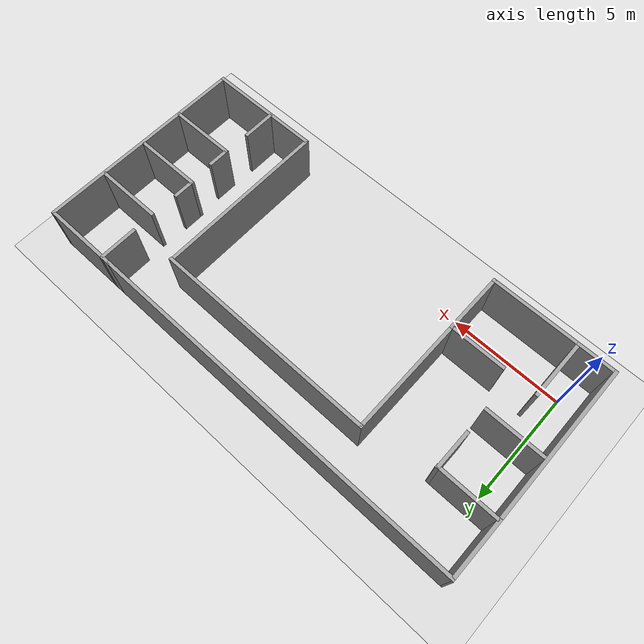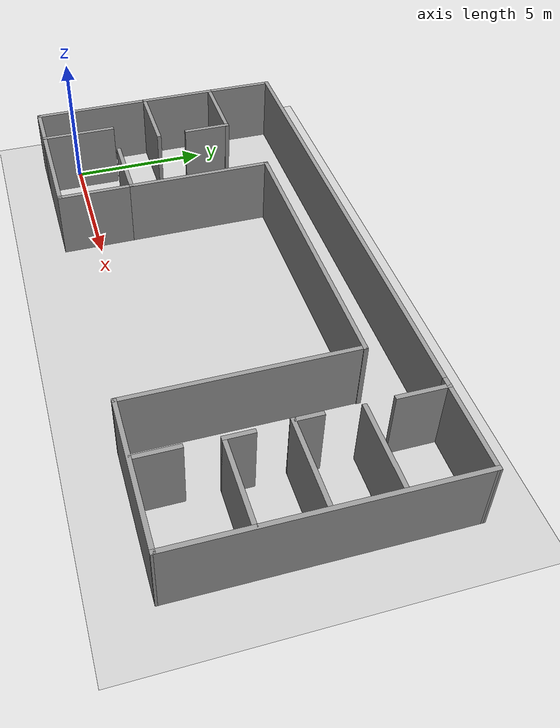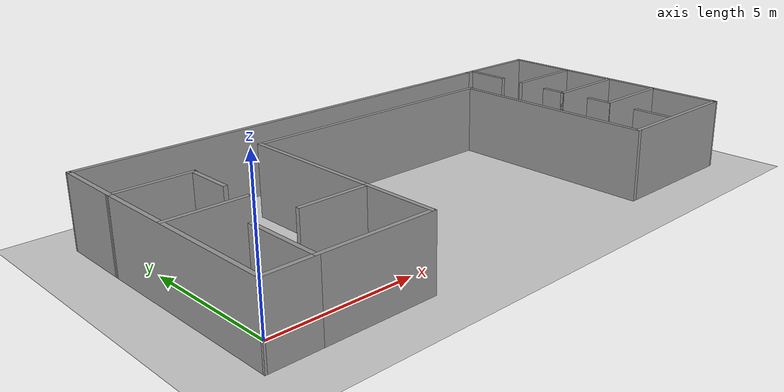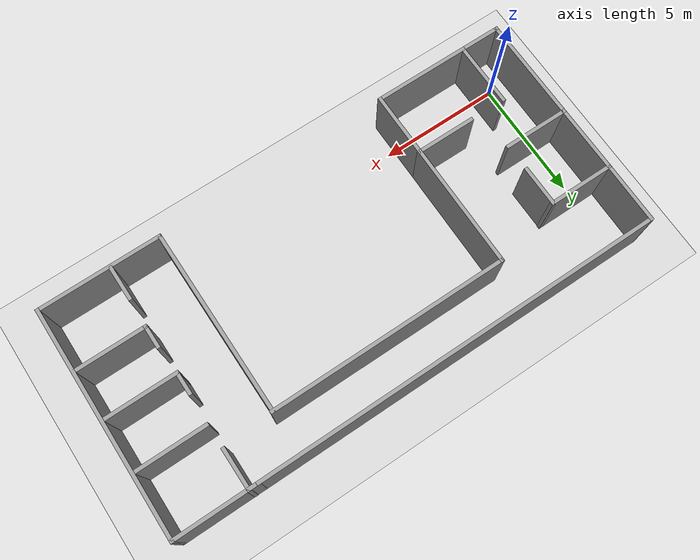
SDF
<sdf version="1.7">
 <world name="default">
  <light name="sun" type="directional">
   <pose>0 0 10 0 -0 0</pose>
   <diffuse>0.8 0.8 0.8 1</diffuse>
   <specular>0.2 0.2 0.2 1</specular>
   <attenuation>
    <range>1000</range>
    <constant>0.9</constant>
    <linear>0.01</linear>
    <quadratic>0.001</quadratic>
   </attenuation>
   <direction>-0.5 0.1 -0.9</direction>
   <spot><inner_angle>0</inner_angle><outer_angle>0</outer_angle><falloff>0</falloff></spot>
  </light>
  <model name="ground_plane">
   <static>1</static>
   <link name="link">
    <collision name="collision">
     <geometry><plane><normal>0 0 1</normal><size>100 100</size></plane></geometry>
     <surface><friction><ode><mu>100</mu><mu2>50</mu2></ode></friction></surface>
    </collision>
    <visual name="visual">
     <cast_shadows>0</cast_shadows>
     <geometry><plane><normal>0 0 1</normal><size>100 100</size></plane></geometry>
     <material>
      <script><uri>file://media/materials/scripts/gazebo.material</uri><name>Gazebo/Grey</name></script>
     </material>
    </visual>
   </link>
  </model>
  <gravity>0 0 -9.8</gravity>
  <magnetic_field>6e-06 2.3e-05 -4.2e-05</magnetic_field>
  <atmosphere type="adiabatic"/>
  <physics type="ode">
   <max_step_size>0.001</max_step_size>
   <real_time_factor>1</real_time_factor>
   <real_time_update_rate>1000</real_time_update_rate>
  </physics>
  <scene><ambient>0.4 0.4 0.4 1</ambient><background>0.7 0.7 0.7 1</background><shadows>1</shadows></scene>
  <spherical_coordinates>
   <surface_model>EARTH_WGS84</surface_model>
   <latitude_deg>0</latitude_deg>
   <longitude_deg>0</longitude_deg>
   <elevation>0</elevation>
   <heading_deg>0</heading_deg>
  </spherical_coordinates>
  <model name="indoors_isolated3">
   <pose>9.27332 3.49203 -0 0 -0 0</pose>
   <link name="Wall_0">
    <collision name="Wall_0_Collision">
     <geometry><box><size>4 0.15 2.5</size></box></geometry>
     <pose>0 0 1.25 0 -0 0</pose>
    </collision>
    <visual name="Wall_0_Visual">
     <pose>0 0 1.25 0 -0 0</pose>
     <geometry><box><size>4 0.15 2.5</size></box></geometry>
     <material>
      <script><uri>file://media/materials/scripts/gazebo.material</uri><name>Gazebo/Grey</name></script>
      <ambient>1 1 1 1</ambient>
     </material>
     <meta><layer>0</layer></meta>
    </visual>
    <pose>-6.56839 -4.72755 0 0 -0 0</pose>
   </link>
   <link name="Wall_10">
    <collision name="Wall_10_Collision">
     <geometry><box><size>2.75 0.15 2.5</size></box></geometry>
     <pose>0 0 1.25 0 -0 0</pose>
    </collision>
    <visual name="Wall_10_Visual">
     <pose>0 0 1.25 0 -0 0</pose>
     <geometry><box><size>2.75 0.15 2.5</size></box></geometry>
     <material>
      <script><uri>file://media/materials/scripts/gazebo.material</uri><name>Gazebo/Grey</name></script>
      <ambient>1 1 1 1</ambient>
     </material>
     <meta><layer>0</layer></meta>
    </visual>
    <pose>-8.79523 -0.466178 0 0 -0 0</pose>
   </link>
   <link name="Wall_12">
    <collision name="Wall_12_Collision">
     <geometry><box><size>5.25 0.15 2.5</size></box></geometry>
     <pose>0 0 1.25 0 -0 0</pose>
    </collision>
    <visual name="Wall_12_Visual">
     <pose>0 0 1.25 0 -0 0</pose>
     <geometry><box><size>5.25 0.15 2.5</size></box></geometry>
     <material>
      <script><uri>file://media/materials/scripts/gazebo.material</uri><name>Gazebo/Grey</name></script>
      <ambient>1 1 1 1</ambient>
     </material>
     <meta><layer>0</layer></meta>
    </visual>
    <pose>-4.64339 0.422455 0 0 -0 1.5708</pose>
   </link>
   <link name="Wall_14">
    <collision name="Wall_14_Collision">
     <geometry><box><size>1.75 0.15 2.5</size></box></geometry>
     <pose>0 0 1.25 0 -0 0</pose>
    </collision>
    <visual name="Wall_14_Visual">
     <pose>0 0 1.25 0 -0 0</pose>
     <geometry><box><size>1.75 0.15 2.5</size></box></geometry>
     <material>
      <script><uri>file://media/materials/scripts/gazebo.material</uri><name>Gazebo/Grey</name></script>
      <ambient>1 1 1 1</ambient>
     </material>
     <meta><layer>0</layer></meta>
    </visual>
    <pose>-7.50661 1.45439 0 0 -0 1.5708</pose>
   </link>
   <link name="Wall_15">
    <collision name="Wall_15_Collision">
     <geometry><box><size>2.75 0.15 2.5</size></box></geometry>
     <pose>0 0 1.25 0 -0 0</pose>
    </collision>
    <visual name="Wall_15_Visual">
     <pose>0 0 1.25 0 -0 0</pose>
     <geometry><box><size>2.75 0.15 2.5</size></box></geometry>
     <material>
      <script><uri>file://media/materials/scripts/gazebo.material</uri><name>Gazebo/Grey</name></script>
      <ambient>1 1 1 1</ambient>
     </material>
     <meta><layer>0</layer></meta>
    </visual>
    <pose>-8.7865 2.25439 0 0 -0 3.14159</pose>
   </link>
   <link name="Wall_17">
    <collision name="Wall_17_Collision">
     <geometry><box><size>2.61811 0.15 2.5</size></box></geometry>
     <pose>0 0 1.25 0 -0 0</pose>
    </collision>
    <visual name="Wall_17_Visual">
     <pose>0 0 1.25 0 -0 0</pose>
     <geometry><box><size>2.61811 0.15 2.5</size></box></geometry>
     <material>
      <script><uri>file://media/materials/scripts/gazebo.material</uri><name>Gazebo/Grey</name></script>
      <ambient>1 1 1 1</ambient>
     </material>
     <meta><layer>0</layer></meta>
    </visual>
    <pose>-10.1 3.48842 0 0 -0 1.56544</pose>
   </link>
   <link name="Wall_18">
    <collision name="Wall_18_Collision">
     <geometry><box><size>17 0.15 2.5</size></box></geometry>
     <pose>0 0 1.25 0 -0 0</pose>
    </collision>
    <visual name="Wall_18_Visual">
     <pose>0 0 1.25 0 -0 0</pose>
     <geometry><box><size>17 0.15 2.5</size></box></geometry>
     <material>
      <script><uri>file://media/materials/scripts/gazebo.material</uri><name>Gazebo/Grey</name></script>
      <ambient>1 1 1 1</ambient>
     </material>
     <meta><layer>0</layer></meta>
    </visual>
    <pose>-1.66839 4.72246 0 0 -0 0</pose>
   </link>
   <link name="Wall_2">
    <collision name="Wall_2_Collision">
     <geometry><box><size>2.75 0.15 2.5</size></box></geometry>
     <pose>0 0 1.25 0 -0 0</pose>
    </collision>
    <visual name="Wall_2_Visual">
     <pose>0 0 1.25 0 -0 0</pose>
     <geometry><box><size>2.75 0.15 2.5</size></box></geometry>
     <material>
      <script><uri>file://media/materials/scripts/gazebo.material</uri><name>Gazebo/Grey</name></script>
      <ambient>1 1 1 1</ambient>
     </material>
     <meta><layer>0</layer></meta>
    </visual>
    <pose>-4.64339 -3.42754 0 0 -0 1.5708</pose>
   </link>
   <link name="Wall_20">
    <collision name="Wall_20_Collision">
     <geometry><box><size>9.89402 0.15 2.5</size></box></geometry>
     <pose>0 0 1.25 0 -0 0</pose>
    </collision>
    <visual name="Wall_20_Visual">
     <pose>0 0 1.25 0 -0 0</pose>
     <geometry><box><size>9.89402 0.15 2.5</size></box></geometry>
     <material>
      <script><uri>file://media/materials/scripts/gazebo.material</uri><name>Gazebo/Grey</name></script>
      <ambient>1 1 1 1</ambient>
     </material>
     <meta><layer>0</layer></meta>
    </visual>
    <pose>0.228623 2.97246 0 0 -0 0</pose>
   </link>
   <link name="Wall_22">
    <collision name="Wall_22_Collision">
     <geometry><box><size>7.75 0.15 2.5</size></box></geometry>
     <pose>0 0 1.25 0 -0 0</pose>
    </collision>
    <visual name="Wall_22_Visual">
     <pose>0 0 1.25 0 -0 0</pose>
     <geometry><box><size>7.75 0.15 2.5</size></box></geometry>
     <material>
      <script><uri>file://media/materials/scripts/gazebo.material</uri><name>Gazebo/Grey</name></script>
      <ambient>1 1 1 1</ambient>
     </material>
     <meta><layer>0</layer></meta>
    </visual>
    <pose>5.07403 -0.827545 0 0 -0 -1.5708</pose>
   </link>
   <link name="Wall_23">
    <collision name="Wall_23_Collision">
     <geometry><box><size>5.10598 0.15 2.5</size></box></geometry>
     <pose>0 0 1.25 0 -0 0</pose>
    </collision>
    <visual name="Wall_23_Visual">
     <pose>0 0 1.25 0 -0 0</pose>
     <geometry><box><size>5.10598 0.15 2.5</size></box></geometry>
     <material>
      <script><uri>file://media/materials/scripts/gazebo.material</uri><name>Gazebo/Grey</name></script>
      <ambient>1 1 1 1</ambient>
     </material>
     <meta><layer>0</layer></meta>
    </visual>
    <pose>7.57862 -4.62754 0 0 -0 0</pose>
   </link>
   <link name="Wall_24">
    <collision name="Wall_24_Collision">
     <geometry><box><size>9.50013 0.15 2.5</size></box></geometry>
     <pose>0 0 1.25 0 -0 0</pose>
    </collision>
    <visual name="Wall_24_Visual">
     <pose>0 0 1.25 0 -0 0</pose>
     <geometry><box><size>9.50013 0.15 2.5</size></box></geometry>
     <material>
      <script><uri>file://media/materials/scripts/gazebo.material</uri><name>Gazebo/Grey</name></script>
      <ambient>1 1 1 1</ambient>
     </material>
     <meta><layer>0</layer></meta>
    </visual>
    <pose>10.0816 0.047455 0 0 -0 1.56545</pose>
   </link>
   <link name="Wall_25">
    <collision name="Wall_25_Collision">
     <geometry><box><size>3.5 0.15 2.5</size></box></geometry>
     <pose>0 0 1.25 0 -0 0</pose>
    </collision>
    <visual name="Wall_25_Visual">
     <pose>0 0 1.25 0 -0 0</pose>
     <geometry><box><size>3.5 0.15 2.5</size></box></geometry>
     <material>
      <script><uri>file://media/materials/scripts/gazebo.material</uri><name>Gazebo/Grey</name></script>
      <ambient>1 1 1 1</ambient>
     </material>
     <meta><layer>0</layer></meta>
    </visual>
    <pose>8.43161 4.72246 0 0 -0 3.14159</pose>
   </link>
   <link name="Wall_27">
    <collision name="Wall_27_Collision">
     <geometry><box><size>1.75 0.15 2.5</size></box></geometry>
     <pose>0 0 1.25 0 -0 0</pose>
    </collision>
    <visual name="Wall_27_Visual">
     <pose>0 0 1.25 0 -0 0</pose>
     <geometry><box><size>1.75 0.15 2.5</size></box></geometry>
     <material>
      <script><uri>file://media/materials/scripts/gazebo.material</uri><name>Gazebo/Grey</name></script>
      <ambient>1 1 1 1</ambient>
     </material>
     <meta><layer>0</layer></meta>
    </visual>
    <pose>7.13532 3.92769 0 0 -0 -1.5708</pose>
   </link>
   <link name="Wall_29">
    <collision name="Wall_29_Collision">
     <geometry><box><size>3 0.15 2.5</size></box></geometry>
     <pose>0 0 1.25 0 -0 0</pose>
    </collision>
    <visual name="Wall_29_Visual">
     <pose>0 0 1.25 0 -0 0</pose>
     <geometry><box><size>3 0.15 2.5</size></box></geometry>
     <material>
      <script><uri>file://media/materials/scripts/gazebo.material</uri><name>Gazebo/Grey</name></script>
      <ambient>1 1 1 1</ambient>
     </material>
     <meta><layer>0</layer></meta>
    </visual>
    <pose>8.61352 2.12087 0 0 -0 0</pose>
   </link>
   <link name="Wall_3">
    <collision name="Wall_3_Collision">
     <geometry><box><size>2.5 0.15 2.5</size></box></geometry>
     <pose>0 0 1.25 0 -0 0</pose>
    </collision>
    <visual name="Wall_3_Visual">
     <pose>0 0 1.25 0 -0 0</pose>
     <geometry><box><size>2.5 0.15 2.5</size></box></geometry>
     <material>
      <script><uri>file://media/materials/scripts/gazebo.material</uri><name>Gazebo/Grey</name></script>
      <ambient>1 1 1 1</ambient>
     </material>
     <meta><layer>0</layer></meta>
    </visual>
    <pose>-5.81839 -2.12755 0 0 -0 3.14159</pose>
   </link>
   <link name="Wall_31">
    <collision name="Wall_31_Collision">
     <geometry><box><size>1.5 0.15 2.5</size></box></geometry>
     <pose>0 0 1.25 0 -0 0</pose>
    </collision>
    <visual name="Wall_31_Visual">
     <pose>0 0 1.25 0 -0 0</pose>
     <geometry><box><size>1.5 0.15 2.5</size></box></geometry>
     <material>
      <script><uri>file://media/materials/scripts/gazebo.material</uri><name>Gazebo/Grey</name></script>
      <ambient>1 1 1 1</ambient>
     </material>
     <meta><layer>0</layer></meta>
    </visual>
    <pose>7.13532 -3.88078 0 0 -0 1.5708</pose>
   </link>
   <link name="Wall_33">
    <collision name="Wall_33_Collision">
     <geometry><box><size>2.9468 0.15 2.5</size></box></geometry>
     <pose>0 0 1.25 0 -0 0</pose>
    </collision>
    <visual name="Wall_33_Visual">
     <pose>0 0 1.25 0 -0 0</pose>
     <geometry><box><size>2.9468 0.15 2.5</size></box></geometry>
     <material>
      <script><uri>file://media/materials/scripts/gazebo.material</uri><name>Gazebo/Grey</name></script>
      <ambient>1 1 1 1</ambient>
     </material>
     <meta><layer>0</layer></meta>
    </visual>
    <pose>8.61352 -2.00216 0 0 -0 0</pose>
   </link>
   <link name="Wall_35">
    <collision name="Wall_35_Collision">
     <geometry><box><size>3 0.15 2.5</size></box></geometry>
     <pose>0 0 1.25 0 -0 0</pose>
    </collision>
    <visual name="Wall_35_Visual">
     <pose>0 0 1.25 0 -0 0</pose>
     <geometry><box><size>3 0.15 2.5</size></box></geometry>
     <material>
      <script><uri>file://media/materials/scripts/gazebo.material</uri><name>Gazebo/Grey</name></script>
      <ambient>1 1 1 1</ambient>
     </material>
     <meta><layer>0</layer></meta>
    </visual>
    <pose>8.53372 0.019451 0 0 -0 0</pose>
   </link>
   <link name="Wall_37">
    <collision name="Wall_37_Collision">
     <geometry><box><size>1 0.15 2.5</size></box></geometry>
     <pose>0 0 1.25 0 -0 0</pose>
    </collision>
    <visual name="Wall_37_Visual">
     <pose>0 0 1.25 0 -0 0</pose>
     <geometry><box><size>1 0.15 2.5</size></box></geometry>
     <material>
      <script><uri>file://media/materials/scripts/gazebo.material</uri><name>Gazebo/Grey</name></script>
      <ambient>1 1 1 1</ambient>
     </material>
     <meta><layer>0</layer></meta>
    </visual>
    <pose>7.10872 0.444451 0 0 -0 1.5708</pose>
   </link>
   <link name="Wall_39">
    <collision name="Wall_39_Collision">
     <geometry><box><size>1 0.15 2.5</size></box></geometry>
     <pose>0 0 1.25 0 -0 0</pose>
    </collision>
    <visual name="Wall_39_Visual">
     <pose>0 0 1.25 0 -0 0</pose>
     <geometry><box><size>1 0.15 2.5</size></box></geometry>
     <material>
      <script><uri>file://media/materials/scripts/gazebo.material</uri><name>Gazebo/Grey</name></script>
      <ambient>1 1 1 1</ambient>
     </material>
     <meta><layer>0</layer></meta>
    </visual>
    <pose>7.18852 -1.57716 0 0 -0 1.5708</pose>
   </link>
   <link name="Wall_5">
    <collision name="Wall_5_Collision">
     <geometry><box><size>2.75 0.15 2.5</size></box></geometry>
     <pose>0 0 1.25 0 -0 0</pose>
    </collision>
    <visual name="Wall_5_Visual">
     <pose>0 0 1.25 0 -0 0</pose>
     <geometry><box><size>2.75 0.15 2.5</size></box></geometry>
     <material>
      <script><uri>file://media/materials/scripts/gazebo.material</uri><name>Gazebo/Grey</name></script>
      <ambient>1 1 1 1</ambient>
     </material>
     <meta><layer>0</layer></meta>
    </visual>
    <pose>-8.49339 -3.42754 0 0 -0 1.5708</pose>
   </link>
   <link name="Wall_7">
    <collision name="Wall_7_Collision">
     <geometry><box><size>1.75 0.15 2.5</size></box></geometry>
     <pose>0 0 1.25 0 -0 0</pose>
    </collision>
    <visual name="Wall_7_Visual">
     <pose>0 0 1.25 0 -0 0</pose>
     <geometry><box><size>1.75 0.15 2.5</size></box></geometry>
     <material>
      <script><uri>file://media/materials/scripts/gazebo.material</uri><name>Gazebo/Grey</name></script>
      <ambient>1 1 1 1</ambient>
     </material>
     <meta><layer>0</layer></meta>
    </visual>
    <pose>-9.29339 -4.72755 0 0 -0 3.14159</pose>
   </link>
   <link name="Wall_8">
    <collision name="Wall_8_Collision">
     <geometry><box><size>7.13194 0.15 2.5</size></box></geometry>
     <pose>0 0 1.25 0 -0 0</pose>
    </collision>
    <visual name="Wall_8_Visual">
     <pose>0 0 1.25 0 -0 0</pose>
     <geometry><box><size>7.13194 0.15 2.5</size></box></geometry>
     <material>
      <script><uri>file://media/materials/scripts/gazebo.material</uri><name>Gazebo/Grey</name></script>
      <ambient>1 1 1 1</ambient>
     </material>
     <meta><layer>0</layer></meta>
    </visual>
    <pose>-10.1 -1.23658 0 0 -0 1.57269</pose>
   </link>
   <static>1</static>
  </model>
 </world>
</sdf>
